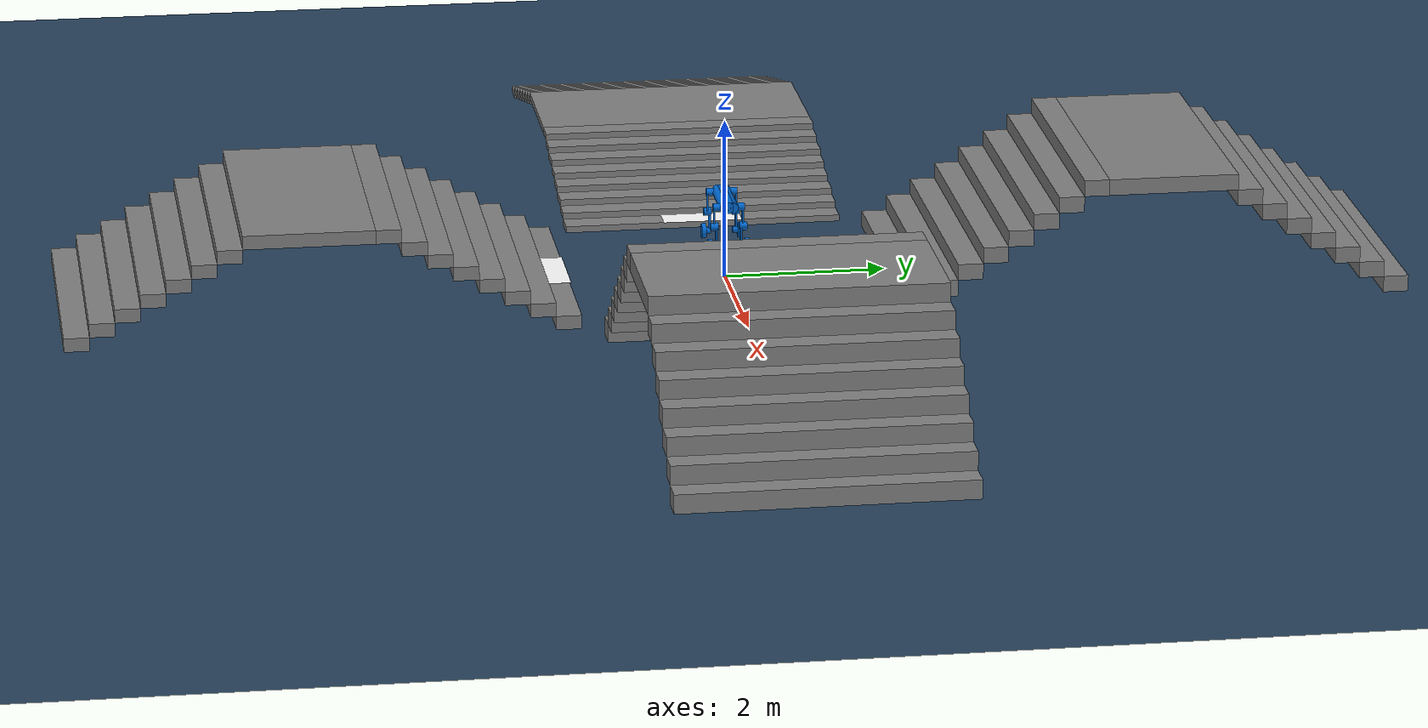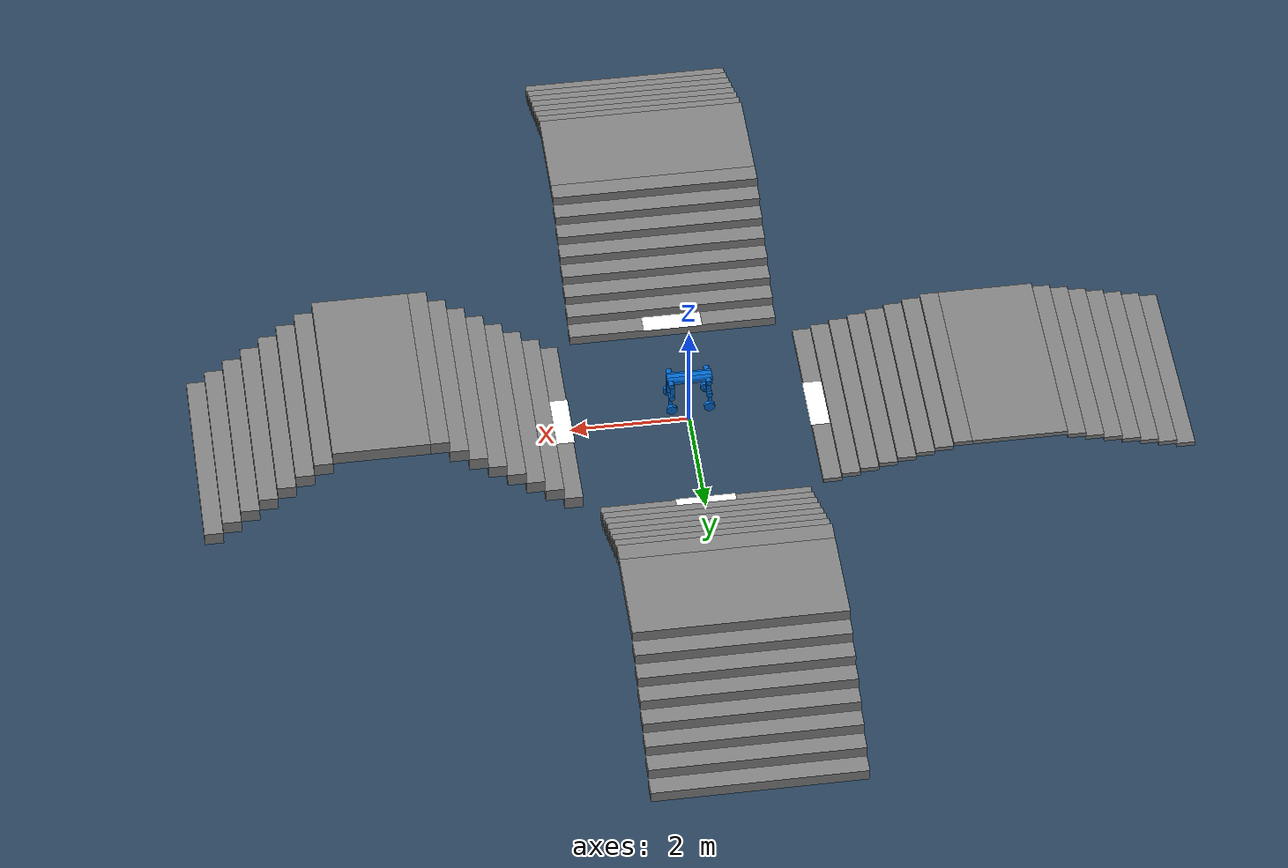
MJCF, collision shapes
<mujoco model="cross_stairs">
  <include file="M20.xml"/>
  <statistic center="0 0 0.1" extent="0.8" />
  <visual>
    <headlight diffuse="0.6 0.6 0.6" ambient="0.3 0.3 0.3" specular="0 0 0" />
    <rgba haze="0.15 0.25 0.35 1" />
    <global azimuth="-130" elevation="-20" />
  </visual>
  <asset>
    <texture type="skybox" builtin="gradient" rgb1="0.3 0.5 0.7" rgb2="0 0 0" width="512" height="3072" />
    <texture type="2d" name="groundplane" builtin="checker" mark="edge" rgb1="0.2 0.3 0.4" rgb2="0.1 0.2 0.3" markrgb="0.8 0.8 0.8" width="300" height="300" />
    <material name="groundplane" texture="groundplane" texuniform="true" texrepeat="5 5" reflectance="0.0" />
    <texture name="tex_stair_8cm" type="2d" file="./imgs/label_stair_8cm.png" />
    <material name="mat_stair_8cm" texture="tex_stair_8cm" specular="0" shininess="0" emission="1" texrepeat="1 1" rgba="1 1 1 1" />
    <texture name="tex_stair_17cm" type="2d" file="./imgs/label_stair_17cm.png" />
    <material name="mat_stair_17cm" texture="tex_stair_17cm" specular="0" shininess="0" emission="1" texrepeat="1 1" rgba="1 1 1 1" />
    <texture name="tex_stair_20cm" type="2d" file="./imgs/label_stair_20cm.png" />
    <material name="mat_stair_20cm" texture="tex_stair_20cm" specular="0" shininess="0" emission="1" texrepeat="1 1" rgba="1 1 1 1" />
    <texture name="tex_stair_23cm" type="2d" file="./imgs/label_stair_23cm.png" />
    <material name="mat_stair_23cm" texture="tex_stair_23cm" specular="0" shininess="0" emission="1" texrepeat="1 1" rgba="1 1 1 1" />
  </asset>
  <worldbody>
    <light pos="0 0 1.5" dir="0 0 -1" directional="true" />
    <geom name="floor" size="0 0 0.05" type="plane" material="groundplane" />

    <geom pos="-2.155 1.8982025386783976e-17 0.082" type="box" size="0.5 0.17532467532467533 0.0001" quat="0.7071067811865476 0.0 0.0 0.7071067811865475" contype="0" conaffinity="0" group="1" material="mat_stair_8cm" rgba="1 1 1 1" />
    <geom pos="9.491012693391988e-18 2.155 0.202" type="box" size="0.5 0.17532467532467533 0.0001" quat="1.0 0.0 0.0 0.0" contype="0" conaffinity="0" group="1" material="mat_stair_20cm" rgba="1 1 1 1" />
    <geom pos="2.155 0.0 0.232" type="box" size="0.5 0.17532467532467533 0.0001" quat="0.7071067811865476 0.0 0.0 -0.7071067811865475" contype="0" conaffinity="0" group="1" material="mat_stair_23cm" rgba="1 1 1 1" />
    <geom pos="9.491012693391988e-18 -2.155 0.172" type="box" size="0.5 0.17532467532467533 0.0001" quat="6.123233995736766e-17 0.0 0.0 -1.0" contype="0" conaffinity="0" group="1" material="mat_stair_17cm" rgba="1 1 1 1" />
    <geom pos="-2.155 1.8982025386783976e-17 0.04" type="box" size="0.155 1.75 0.04" quat="6.123233995736766e-17 0.0 0.0 1.0" />
    <geom pos="-2.465 5.694607616035192e-17 0.12" type="box" size="0.155 1.75 0.04" quat="6.123233995736766e-17 0.0 0.0 1.0" />
    <geom pos="-2.775 9.491012693391986e-17 0.2" type="box" size="0.155 1.75 0.04" quat="6.123233995736766e-17 0.0 0.0 1.0" />
    <geom pos="-3.085 1.328741777074878e-16 0.28" type="box" size="0.155 1.75 0.04" quat="6.123233995736766e-17 0.0 0.0 1.0" />
    <geom pos="-3.395 1.7083822848105578e-16 0.36000000000000004" type="box" size="0.155 1.75 0.04" quat="6.123233995736766e-17 0.0 0.0 1.0" />
    <geom pos="-3.705 2.0880227925462374e-16 0.44000000000000006" type="box" size="0.155 1.75 0.04" quat="6.123233995736766e-17 0.0 0.0 1.0" />
    <geom pos="-4.015000000000001 2.467663300281917e-16 0.52" type="box" size="0.155 1.75 0.04" quat="6.123233995736766e-17 0.0 0.0 1.0" />
    <geom pos="-4.325 2.8473038080175964e-16 0.6" type="box" size="0.155 1.75 0.04" quat="6.123233995736766e-17 0.0 0.0 1.0" />
    <geom pos="-5.28 4.016841501203319e-16 0.6" type="box" size="0.8 1.75 0.04" quat="6.123233995736766e-17 0.0 0.0 1.0" />
    <geom pos="-6.235 5.186379194389041e-16 0.52" type="box" size="0.155 1.75 0.04" quat="6.123233995736766e-17 0.0 0.0 1.0" />
    <geom pos="-6.545 5.56601970212472e-16 0.44" type="box" size="0.155 1.75 0.04" quat="6.123233995736766e-17 0.0 0.0 1.0" />
    <geom pos="-6.8549999999999995 5.945660209860399e-16 0.36" type="box" size="0.155 1.75 0.04" quat="6.123233995736766e-17 0.0 0.0 1.0" />
    <geom pos="-7.164999999999999 6.325300717596078e-16 0.27999999999999997" type="box" size="0.155 1.75 0.04" quat="6.123233995736766e-17 0.0 0.0 1.0" />
    <geom pos="-7.474999999999999 6.704941225331758e-16 0.19999999999999996" type="box" size="0.155 1.75 0.04" quat="6.123233995736766e-17 0.0 0.0 1.0" />
    <geom pos="-7.784999999999998 7.084581733067436e-16 0.11999999999999995" type="box" size="0.155 1.75 0.04" quat="6.123233995736766e-17 0.0 0.0 1.0" />
    <geom pos="-8.094999999999999 7.464222240803115e-16 0.03999999999999995" type="box" size="0.155 1.75 0.04" quat="6.123233995736766e-17 0.0 0.0 1.0" />
    <geom pos="9.491012693391988e-18 2.155 0.1" type="box" size="0.155 1.75 0.1" quat="0.7071067811865476 0.0 0.0 0.7071067811865475" />
    <geom pos="2.847303808017596e-17 2.465 0.30000000000000004" type="box" size="0.155 1.75 0.1" quat="0.7071067811865476 0.0 0.0 0.7071067811865475" />
    <geom pos="4.745506346695993e-17 2.775 0.5" type="box" size="0.155 1.75 0.1" quat="0.7071067811865476 0.0 0.0 0.7071067811865475" />
    <geom pos="6.64370888537439e-17 3.085 0.7" type="box" size="0.155 1.75 0.1" quat="0.7071067811865476 0.0 0.0 0.7071067811865475" />
    <geom pos="8.541911424052789e-17 3.395 0.8999999999999999" type="box" size="0.155 1.75 0.1" quat="0.7071067811865476 0.0 0.0 0.7071067811865475" />
    <geom pos="1.0440113962731187e-16 3.705 1.0999999999999999" type="box" size="0.155 1.75 0.1" quat="0.7071067811865476 0.0 0.0 0.7071067811865475" />
    <geom pos="1.2338316501409585e-16 4.015000000000001 1.2999999999999998" type="box" size="0.155 1.75 0.1" quat="0.7071067811865476 0.0 0.0 0.7071067811865475" />
    <geom pos="1.4236519040087982e-16 4.325 1.4999999999999998" type="box" size="0.155 1.75 0.1" quat="0.7071067811865476 0.0 0.0 0.7071067811865475" />
    <geom pos="2.0084207506016595e-16 5.28 1.4999999999999998" type="box" size="0.8 1.75 0.1" quat="0.7071067811865476 0.0 0.0 0.7071067811865475" />
    <geom pos="2.5931895971945205e-16 6.235 1.2999999999999998" type="box" size="0.155 1.75 0.1" quat="0.7071067811865476 0.0 0.0 0.7071067811865475" />
    <geom pos="2.78300985106236e-16 6.545 1.0999999999999999" type="box" size="0.155 1.75 0.1" quat="0.7071067811865476 0.0 0.0 0.7071067811865475" />
    <geom pos="2.9728301049301994e-16 6.8549999999999995 0.8999999999999999" type="box" size="0.155 1.75 0.1" quat="0.7071067811865476 0.0 0.0 0.7071067811865475" />
    <geom pos="3.162650358798039e-16 7.164999999999999 0.7" type="box" size="0.155 1.75 0.1" quat="0.7071067811865476 0.0 0.0 0.7071067811865475" />
    <geom pos="3.352470612665879e-16 7.474999999999999 0.49999999999999994" type="box" size="0.155 1.75 0.1" quat="0.7071067811865476 0.0 0.0 0.7071067811865475" />
    <geom pos="3.542290866533718e-16 7.784999999999998 0.29999999999999993" type="box" size="0.155 1.75 0.1" quat="0.7071067811865476 0.0 0.0 0.7071067811865475" />
    <geom pos="3.7321111204015577e-16 8.094999999999999 0.09999999999999992" type="box" size="0.155 1.75 0.1" quat="0.7071067811865476 0.0 0.0 0.7071067811865475" />
    <geom pos="2.155 0.0 0.115" type="box" size="0.155 1.75 0.115" quat="1.0 0.0 0.0 0.0" />
    <geom pos="2.465 0.0 0.34500000000000003" type="box" size="0.155 1.75 0.115" quat="1.0 0.0 0.0 0.0" />
    <geom pos="2.775 0.0 0.5750000000000001" type="box" size="0.155 1.75 0.115" quat="1.0 0.0 0.0 0.0" />
    <geom pos="3.085 0.0 0.805" type="box" size="0.155 1.75 0.115" quat="1.0 0.0 0.0 0.0" />
    <geom pos="3.395 0.0 1.0350000000000001" type="box" size="0.155 1.75 0.115" quat="1.0 0.0 0.0 0.0" />
    <geom pos="3.705 0.0 1.2650000000000001" type="box" size="0.155 1.75 0.115" quat="1.0 0.0 0.0 0.0" />
    <geom pos="4.015000000000001 0.0 1.495" type="box" size="0.155 1.75 0.115" quat="1.0 0.0 0.0 0.0" />
    <geom pos="4.325 0.0 1.725" type="box" size="0.155 1.75 0.115" quat="1.0 0.0 0.0 0.0" />
    <geom pos="5.28 0.0 1.725" type="box" size="0.8 1.75 0.115" quat="1.0 0.0 0.0 0.0" />
    <geom pos="6.235 0.0 1.495" type="box" size="0.155 1.75 0.115" quat="1.0 0.0 0.0 0.0" />
    <geom pos="6.545 0.0 1.2650000000000001" type="box" size="0.155 1.75 0.115" quat="1.0 0.0 0.0 0.0" />
    <geom pos="6.8549999999999995 0.0 1.0350000000000001" type="box" size="0.155 1.75 0.115" quat="1.0 0.0 0.0 0.0" />
    <geom pos="7.164999999999999 0.0 0.8050000000000002" type="box" size="0.155 1.75 0.115" quat="1.0 0.0 0.0 0.0" />
    <geom pos="7.474999999999999 0.0 0.5750000000000002" type="box" size="0.155 1.75 0.115" quat="1.0 0.0 0.0 0.0" />
    <geom pos="7.784999999999998 0.0 0.3450000000000002" type="box" size="0.155 1.75 0.115" quat="1.0 0.0 0.0 0.0" />
    <geom pos="8.094999999999999 0.0 0.11500000000000019" type="box" size="0.155 1.75 0.115" quat="1.0 0.0 0.0 0.0" />
    <geom pos="9.491012693391988e-18 -2.155 0.08499999999999999" type="box" size="0.155 1.75 0.08499999999999999" quat="0.7071067811865476 0.0 0.0 -0.7071067811865475" />
    <geom pos="2.847303808017596e-17 -2.465 0.255" type="box" size="0.155 1.75 0.08499999999999999" quat="0.7071067811865476 0.0 0.0 -0.7071067811865475" />
    <geom pos="4.745506346695993e-17 -2.775 0.425" type="box" size="0.155 1.75 0.08499999999999999" quat="0.7071067811865476 0.0 0.0 -0.7071067811865475" />
    <geom pos="6.64370888537439e-17 -3.085 0.595" type="box" size="0.155 1.75 0.08499999999999999" quat="0.7071067811865476 0.0 0.0 -0.7071067811865475" />
    <geom pos="8.541911424052789e-17 -3.395 0.7649999999999999" type="box" size="0.155 1.75 0.08499999999999999" quat="0.7071067811865476 0.0 0.0 -0.7071067811865475" />
    <geom pos="1.0440113962731187e-16 -3.705 0.9349999999999998" type="box" size="0.155 1.75 0.08499999999999999" quat="0.7071067811865476 0.0 0.0 -0.7071067811865475" />
    <geom pos="1.2338316501409585e-16 -4.015000000000001 1.1049999999999998" type="box" size="0.155 1.75 0.08499999999999999" quat="0.7071067811865476 0.0 0.0 -0.7071067811865475" />
    <geom pos="1.4236519040087982e-16 -4.325 1.2749999999999997" type="box" size="0.155 1.75 0.08499999999999999" quat="0.7071067811865476 0.0 0.0 -0.7071067811865475" />
    <geom pos="2.0084207506016595e-16 -5.28 1.2749999999999997" type="box" size="0.8 1.75 0.08499999999999999" quat="0.7071067811865476 0.0 0.0 -0.7071067811865475" />
    <geom pos="2.5931895971945205e-16 -6.235 1.1049999999999998" type="box" size="0.155 1.75 0.08499999999999999" quat="0.7071067811865476 0.0 0.0 -0.7071067811865475" />
    <geom pos="2.78300985106236e-16 -6.545 0.9349999999999998" type="box" size="0.155 1.75 0.08499999999999999" quat="0.7071067811865476 0.0 0.0 -0.7071067811865475" />
    <geom pos="2.9728301049301994e-16 -6.8549999999999995 0.7649999999999999" type="box" size="0.155 1.75 0.08499999999999999" quat="0.7071067811865476 0.0 0.0 -0.7071067811865475" />
    <geom pos="3.162650358798039e-16 -7.164999999999999 0.595" type="box" size="0.155 1.75 0.08499999999999999" quat="0.7071067811865476 0.0 0.0 -0.7071067811865475" />
    <geom pos="3.352470612665879e-16 -7.474999999999999 0.425" type="box" size="0.155 1.75 0.08499999999999999" quat="0.7071067811865476 0.0 0.0 -0.7071067811865475" />
    <geom pos="3.542290866533718e-16 -7.784999999999998 0.255" type="box" size="0.155 1.75 0.08499999999999999" quat="0.7071067811865476 0.0 0.0 -0.7071067811865475" />
    <geom pos="3.7321111204015577e-16 -8.094999999999999 0.08500000000000002" type="box" size="0.155 1.75 0.08499999999999999" quat="0.7071067811865476 0.0 0.0 -0.7071067811865475" />
  </worldbody>
</mujoco>

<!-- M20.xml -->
<mujoco model="M20">

    <default>
        <default class="robot">
            <default class="motor">
                <joint/>
                <motor/>
            </default>
            <default class="visual">
                <geom material="default_material" contype="0" conaffinity="0" group="2"/>
            </default>
            <default class="collision">
                <geom material="collision_material" condim="3" contype="1" conaffinity="1" solref="0.005 1"
                      friction="1 0.01 0.001" density="0" group="1"/>
            </default>
        </default>
    </default>

    <compiler angle="radian" meshdir="../meshes/"/>
    <compiler autolimits="true"/>

    <asset>
        <material name="default_material" rgba="0.7 0.7 0.7 1"/>
        <material name="collision_material" rgba="0.0 0.4 0.8 0.2"/>
        <mesh name="base_link" file="base_link.STL"/>
        <mesh name="fl_hipx" file="fl_hipx.STL"/>
        <mesh name="fl_hipy" file="fl_hipy.STL"/>
        <mesh name="fl_knee" file="fl_knee.STL"/>
        <mesh name="fl_wheel" file="fl_wheel.STL"/>
        <mesh name="fr_hipx" file="fr_hipx.STL"/>
        <mesh name="fr_hipy" file="fr_hipy.STL"/>
        <mesh name="fr_knee" file="fr_knee.STL"/>
        <mesh name="fr_wheel" file="fr_wheel.STL"/>
        <mesh name="hl_hipx" file="hl_hipx.STL"/>
        <mesh name="hl_hipy" file="hl_hipy.STL"/>
        <mesh name="hl_knee" file="hl_knee.STL"/>
        <mesh name="hl_wheel" file="hl_wheel.STL"/>
        <mesh name="hr_hipx" file="hr_hipx.STL"/>
        <mesh name="hr_hipy" file="hr_hipy.STL"/>
        <mesh name="hr_knee" file="hr_knee.STL"/>
        <mesh name="hr_wheel" file="hr_wheel.STL"/>
        <texture name="texplane" type="2d" builtin="checker" rgb1=".2 .3 .4" rgb2=".1 0.15 0.2"
                 width="512" height="512"/>
        <material name='MatPlane' reflectance='0.3' texture="texplane" texrepeat="1 1" texuniform="true"/>
    </asset>

    <worldbody>
        <!-- 灯光 -->

        <body name="base_link" pos="0 0. 1." quat="1 0 0 0" childclass="robot">
            <freejoint name="floating_base"/>
            <inertial pos="0.00355105878308153 0.0016507579200937 -0.00346462146571654"
                      quat="1 0 0 0"
                      mass="15.882" diaginertia="0.087919 0.533522 0.563492"/>

            <site name="imu_site" pos="0.0632 -0.0268 0.0435" size="0.005" rgba="1 0 0 1"/>
            <site name="base_site" pos="0 0 0" quat="1 0 0 0"/>

            <geom type="mesh" mesh="base_link" class="visual"/>
            <geom size="0.375 0.045 0.07" type="box" class="collision"/>
            <geom size="0.07 0.375" pos="0 0.045 0" quat="0.707107 0 0.707107 0" type="cylinder" class="collision"/>
            <geom size="0.07 0.375" pos="0 -0.045 0" quat="0.707107 0 0.707107 0" type="cylinder" class="collision"/>

            <body name="fl_hipx" pos="0.3141 0.0685 0">
                <inertial pos="-0.0111893 0.00891693 0.000405666" quat="0.581628 0.481707 0.465607 0.461387"
                          mass="0.259964"
                          diaginertia="0.000374402 0.000286289 0.000179309"/>
                <joint name="fl_hipx_joint" pos="0 0 0" axis="-1 0 0" range="-0.436 0.611"
                       actuatorfrcrange="-76.4 76.4"/>
                <geom type="mesh" mesh="fl_hipx" class="visual"/>
                <geom size="0.048 0.07" pos="0 0.055 0" quat="0.707107 0.707107 0 0" type="cylinder" class="collision"/>
                <body name="fl_hipy">
                    <inertial pos="-0.00199375 0.098439 -0.130664" quat="0.6754 -0.0565887 0.0622156 0.73264"
                              mass="2.618"
                              diaginertia="0.0410181 0.0408067 0.00297328"/>
                    <joint name="fl_hipy_joint" pos="0 0 0" axis="0 -1 0" range="-2.286 2.583"
                           actuatorfrcrange="-76.4 76.4"/>
                    <geom type="mesh" mesh="fl_hipy" class="visual"/>
                    <geom size="0.035 0.01 0.125" pos="-0.01 0.11 -0.125" type="box" class="collision"/>
                    <geom size="0.05 0.045" pos="0 0.11 -0.25" quat="0.707107 0.707107 0 0" type="cylinder"
                          class="collision"/>
                    <body name="fl_knee" pos="0 0.0984 -0.25">
                        <inertial pos="0.00341917 0.00269124 -0.181265" quat="0.633405 -0.0508555 0.0475887 0.77068"
                                  mass="1.145" diaginertia="0.0121304 0.0117245 0.000948105"/>
                        <joint name="fl_knee_joint" pos="0 0 0" axis="0 -1 0" range="-2.809 2.792"
                               actuatorfrcrange="-76.4 76.4"/>
                        <geom type="mesh" mesh="fl_knee" class="visual"/>
                        <geom size="0.03 0.0125 0.125" pos="0.015 -0.015 -0.125" type="box" class="collision"/>
                        <geom size="0.04 0.05" pos="0 0.02 -0.25" quat="0.707107 0.707107 0 0" type="cylinder"
                              class="collision"/>
                        <body name="fl_wheel" pos="0 0.059676 -0.25">
                            <inertial pos="-3.11398e-07 0.000279002 5.70329e-07" quat="0.707107 0 0 0.707107"
                                      mass="0.638"
                                      diaginertia="0.002853 0.001535 0.001535"/>
                            <joint name="fl_wheel_joint" pos="0 0 0" axis="0 -1 0" actuatorfrcrange="-21.6 21.6"/>
                            <geom type="mesh" mesh="fl_wheel" class="visual"/>
                            <geom size="0.09 0.027" quat="0.707107 0.707107 0 0" type="cylinder" class="collision"/>
                        </body>
                    </body>
                </body>
            </body>
            <body name="fr_hipx" pos="0.3141 -0.0685 0">
                <inertial pos="-0.0110901 -0.00875035 0.000521421" quat="0.461387 0.465607 0.481707 0.581628"
                          mass="0.259964" diaginertia="0.000374402 0.000286289 0.000179309"/>
                <joint name="fr_hipx_joint" pos="0 0 0" axis="-1 0 0" range="-0.611 0.436"
                       actuatorfrcrange="-76.4 76.4"/>
                <geom type="mesh" mesh="fr_hipx" class="visual"/>
                <geom size="0.048 0.07" pos="0 -0.055 0" quat="0.707107 0.707107 0 0" type="cylinder"
                      class="collision"/>
                <body name="fr_hipy">
                    <inertial pos="-0.00229992 -0.0989709 -0.130925" quat="0.6964 0.0586688 -0.0587886 0.712831"
                              mass="2.618" diaginertia="0.0407542 0.040538 0.00301281"/>
                    <joint name="fr_hipy_joint" pos="0 0 0" axis="0 -1 0" range="-2.286 2.583"
                           actuatorfrcrange="-76.4 76.4"/>
                    <geom type="mesh" mesh="fr_hipy" class="visual"/>
                    <geom size="0.035 0.01 0.125" pos="-0.01 -0.11 -0.125" type="box" class="collision"/>
                    <geom size="0.05 0.045" pos="0 -0.11 -0.25" quat="0.707107 0.707107 0 0" type="cylinder"
                          class="collision"/>
                    <body name="fr_knee" pos="0 -0.0984 -0.25">
                        <inertial pos="0.00354945 -0.00247884 -0.180089" quat="0.769194 0.0472982 -0.0504711 0.635261"
                                  mass="1.145" diaginertia="0.0122564 0.0118448 0.000951718"/>
                        <joint name="fr_knee_joint" pos="0 0 0" axis="0 -1 0" range="-2.809 2.792"
                               actuatorfrcrange="-76.4 76.4"/>
                        <geom type="mesh" mesh="fr_knee" class="visual"/>
                        <geom size="0.03 0.0125 0.125" pos="0.015 0.015 -0.125" type="box" class="collision"/>
                        <geom size="0.04 0.05" pos="0 -0.02 -0.25" quat="0.707107 0.707107 0 0" type="cylinder"
                              class="collision"/>
                        <body name="fr_wheel" pos="0 -0.059676 -0.25">
                            <inertial pos="-6.47327e-07 -0.000279012 -4.6242e-08" quat="0.707107 0 0 0.707107"
                                      mass="0.638"
                                      diaginertia="0.002853 0.001535 0.001535"/>
                            <joint name="fr_wheel_joint" pos="0 0 0" axis="0 -1 0" actuatorfrcrange="-21.6 21.6"/>
                            <geom type="mesh" mesh="fr_wheel" class="visual"/>
                            <geom size="0.09 0.027" quat="0.707107 0.707107 0 0" type="cylinder" class="collision"/>
                        </body>
                    </body>
                </body>
            </body>
            <body name="hl_hipx" pos="-0.3141 0.0685 0">
                <inertial pos="0.0110901 0.00875014 0.000524884" quat="0.465607 0.461387 0.581628 0.481707"
                          mass="0.259964"
                          diaginertia="0.000374402 0.000286289 0.000179309"/>
                <joint name="hl_hipx_joint" pos="0 0 0" axis="-1 0 0" range="-0.436 0.611"
                       actuatorfrcrange="-76.4 76.4"/>
                <geom type="mesh" mesh="hl_hipx" class="visual"/>
                <geom size="0.048 0.07" pos="0 0.055 0" quat="0.707107 0.707107 0 0" type="cylinder" class="collision"/>
                <body name="hl_hipy">
                    <inertial pos="0.00204343 0.0990227 -0.130697" quat="0.750359 -0.0628584 0.0546506 0.655761"
                              mass="2.618" diaginertia="0.0408376 0.0406211 0.00299727"/>
                    <joint name="hl_hipy_joint" pos="0 0 0" axis="0 -1 0" range="-2.583 2.286"
                           actuatorfrcrange="-76.4 76.4"/>
                    <geom type="mesh" mesh="hl_hipy" class="visual"/>
                    <geom size="0.035 0.01 0.125" pos="0.01 0.11 -0.125" type="box" class="collision"/>
                    <geom size="0.05 0.045" pos="0 0.11 -0.25" quat="0.707107 0.707107 0 0" type="cylinder"
                          class="collision"/>
                    <body name="hl_knee" pos="0 0.0984 -0.25">
                        <inertial pos="-0.00354945 0.00247885 -0.180089" quat="0.769194 -0.0472982 0.0504711 0.635261"
                                  mass="1.145" diaginertia="0.0122564 0.0118448 0.000951718"/>
                        <joint name="hl_knee_joint" pos="0 0 0" axis="0 -1 0" range="-2.792 2.809"
                               actuatorfrcrange="-76.4 76.4"/>
                        <geom type="mesh" mesh="hl_knee" class="visual"/>
                        <geom size="0.03 0.0125 0.125" pos="-0.015 0.015 -0.125" type="box" class="collision"/>
                        <geom size="0.04 0.05" pos="0 0.02 -0.25" quat="0.707107 0.707107 0 0" type="cylinder"
                              class="collision"/>
                        <body name="hl_wheel" pos="0 0.059676 -0.25">
                            <inertial pos="-6.07889e-07 0.000279009 2.1049e-07" quat="0.707107 0 0 0.707107"
                                      mass="0.638"
                                      diaginertia="0.002853 0.001535 0.001535"/>
                            <joint name="hl_wheel_joint" pos="0 0 0" axis="0 -1 0" actuatorfrcrange="-21.6 21.6"/>
                            <geom type="mesh" mesh="hl_wheel" class="visual"/>
                            <geom size="0.09 0.027" quat="0.707107 0.707107 0 0" type="cylinder" class="collision"/>
                        </body>
                    </body>
                </body>
            </body>
            <body name="hr_hipx" pos="-0.3141 -0.0685 0">
                <inertial pos="0.0110902 -0.00875012 0.000524937" quat="0.481707 0.581628 0.461387 0.465607"
                          mass="0.259964"
                          diaginertia="0.000374402 0.000286289 0.000179309"/>
                <joint name="hr_hipx_joint" pos="0 0 0" axis="-1 0 0" range="-0.611 0.436"
                       actuatorfrcrange="-76.4 76.4"/>
                <geom type="mesh" mesh="hr_hipx" class="visual"/>
                <geom size="0.048 0.07" pos="0 -0.055 0" quat="0.707107 0.707107 0 0" type="cylinder"
                      class="collision"/>
                <body name="hr_hipy">
                    <inertial pos="0.001992 -0.0983704 -0.130561" quat="0.676694 0.0567616 -0.0621797 0.731435"
                              mass="2.618"
                              diaginertia="0.0410109 0.0408028 0.00297526"/>
                    <joint name="hr_hipy_joint" pos="0 0 0" axis="0 -1 0" range="-2.583 2.286"
                           actuatorfrcrange="-76.4 76.4"/>
                    <geom type="mesh" mesh="hr_hipy" class="visual"/>
                    <geom size="0.035 0.01 0.125" pos="0.01 -0.11 -0.125" type="box" class="collision"/>
                    <geom size="0.05 0.045" pos="0 -0.11 -0.25" quat="0.707107 0.707107 0 0" type="cylinder"
                          class="collision"/>
                    <body name="hr_knee" pos="0 -0.0984 -0.25">
                        <inertial pos="-0.00341053 -0.00270202 -0.181287" quat="0.63448 0.050937 -0.0475303 0.769793"
                                  mass="1.145" diaginertia="0.0121352 0.0117289 0.000948904"/>
                        <joint name="hr_knee_joint" pos="0 0 0" axis="0 -1 0" range="-2.792 2.809"
                               actuatorfrcrange="-76.4 76.4"/>
                        <geom type="mesh" mesh="hr_knee" class="visual"/>
                        <geom size="0.03 0.0125 0.125" pos="-0.015 0.015 -0.125" type="box" class="collision"/>
                        <geom size="0.04 0.05" pos="0 -0.02 -0.25" quat="0.707107 0.707107 0 0" type="cylinder"
                              class="collision"/>
                        <body name="hr_wheel" pos="0 -0.059676 -0.25">
                            <inertial pos="6.09746e-07 -0.000279009 2.01314e-07" quat="0.707107 0 0 0.707107"
                                      mass="0.638"
                                      diaginertia="0.002853 0.001535 0.001535"/>
                            <joint name="hr_wheel_joint" pos="0 0 0" axis="0 -1 0" actuatorfrcrange="-21.6 21.6"/>
                            <geom type="mesh" mesh="hr_wheel" class="visual"/>
                            <geom size="0.09 0.027" quat="0.707107 0.707107 0 0" type="cylinder" class="collision"/>
                        </body>
                    </body>
                </body>
            </body>
        </body>
    </worldbody>

    <actuator>
        <motor name="fl_hipx_joint" joint="fl_hipx_joint" ctrllimited="true" ctrlrange="-76.4 76.4" gear="1"/>
        <motor name="fl_hipy_joint" joint="fl_hipy_joint" ctrllimited="true" ctrlrange="-76.4 76.4" gear="1"/>
        <motor name="fl_knee_joint" joint="fl_knee_joint" ctrllimited="true" ctrlrange="-76.4 76.4" gear="1"/>
        <motor name="fl_wheel_joint" joint="fl_wheel_joint" ctrllimited="true" ctrlrange="-21.6 21.6" gear="1"/>
        <motor name="fr_hipx_joint" joint="fr_hipx_joint" ctrllimited="true" ctrlrange="-76.4 76.4" gear="1"/>
        <motor name="fr_hipy_joint" joint="fr_hipy_joint" ctrllimited="true" ctrlrange="-76.4 76.4" gear="1"/>
        <motor name="fr_knee_joint" joint="fr_knee_joint" ctrllimited="true" ctrlrange="-76.4 76.4" gear="1"/>
        <motor name="fr_wheel_joint" joint="fr_wheel_joint" ctrllimited="true" ctrlrange="-21.6 21.6" gear="1"/>
        <motor name="hl_hipx_joint" joint="hl_hipx_joint" ctrllimited="true" ctrlrange="-76.4 76.4" gear="1"/>
        <motor name="hl_hipy_joint" joint="hl_hipy_joint" ctrllimited="true" ctrlrange="-76.4 76.4" gear="1"/>
        <motor name="hl_knee_joint" joint="hl_knee_joint" ctrllimited="true" ctrlrange="-76.4 76.4" gear="1"/>
        <motor name="hl_wheel_joint" joint="hl_wheel_joint" ctrllimited="true" ctrlrange="-21.6 21.6" gear="1"/>
        <motor name="hr_hipx_joint" joint="hr_hipx_joint" ctrllimited="true" ctrlrange="-76.4 76.4" gear="1"/>
        <motor name="hr_hipy_joint" joint="hr_hipy_joint" ctrllimited="true" ctrlrange="-76.4 76.4" gear="1"/>
        <motor name="hr_knee_joint" joint="hr_knee_joint" ctrllimited="true" ctrlrange="-76.4 76.4" gear="1"/>
        <motor name="hr_wheel_joint" joint="hr_wheel_joint" ctrllimited="true" ctrlrange="-21.6 21.6" gear="1"/>
    </actuator>

    <contact>
        <exclude body1="base_link" body2="fl_hipx"/>
        <exclude body1="fl_hipx" body2="fl_hipy"/>
        <exclude body1="fl_hipy" body2="fl_knee"/>
        <exclude body1="fl_knee" body2="fl_wheel"/>

        <exclude body1="base_link" body2="fr_hipx"/>
        <exclude body1="fr_hipx" body2="fr_hipy"/>
        <exclude body1="fr_hipy" body2="fr_knee"/>
        <exclude body1="fr_knee" body2="fr_wheel"/>

        <exclude body1="base_link" body2="hl_hipx"/>
        <exclude body1="hl_hipx" body2="hl_hipy"/>
        <exclude body1="hl_hipy" body2="hl_knee"/>
        <exclude body1="hl_knee" body2="hl_wheel"/>

        <exclude body1="base_link" body2="hr_hipx"/>
        <exclude body1="hr_hipx" body2="hr_hipy"/>
        <exclude body1="hr_hipy" body2="hr_knee"/>
        <exclude body1="hr_knee" body2="hr_wheel"/>

    </contact>

    <sensor>
        <framequat name="base_quat" objtype="site" objname="base_site"/>
        <accelerometer site="imu_site"/>
        <gyro site="imu_site"/>

    </sensor>
</mujoco>
